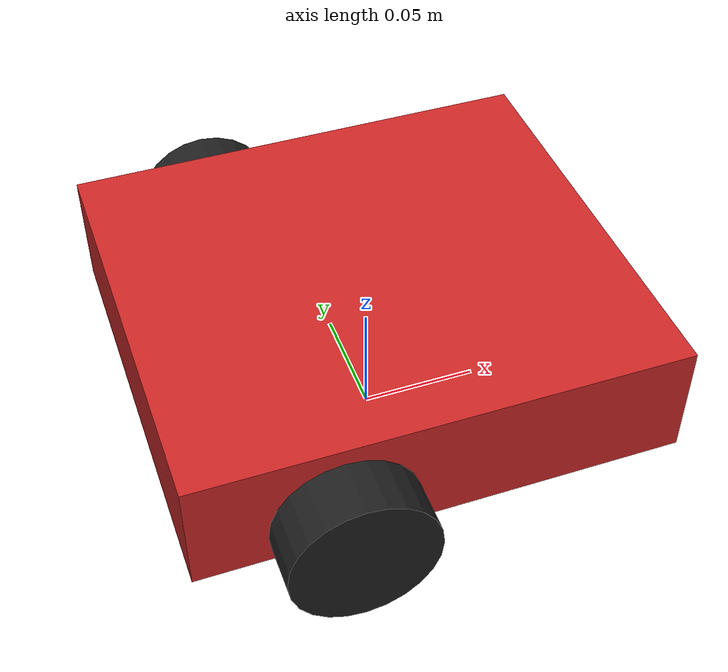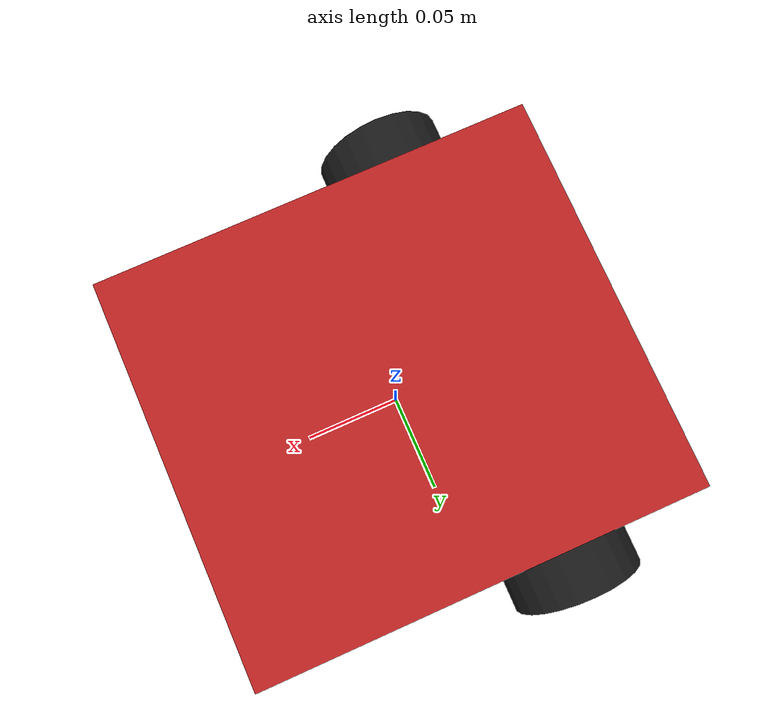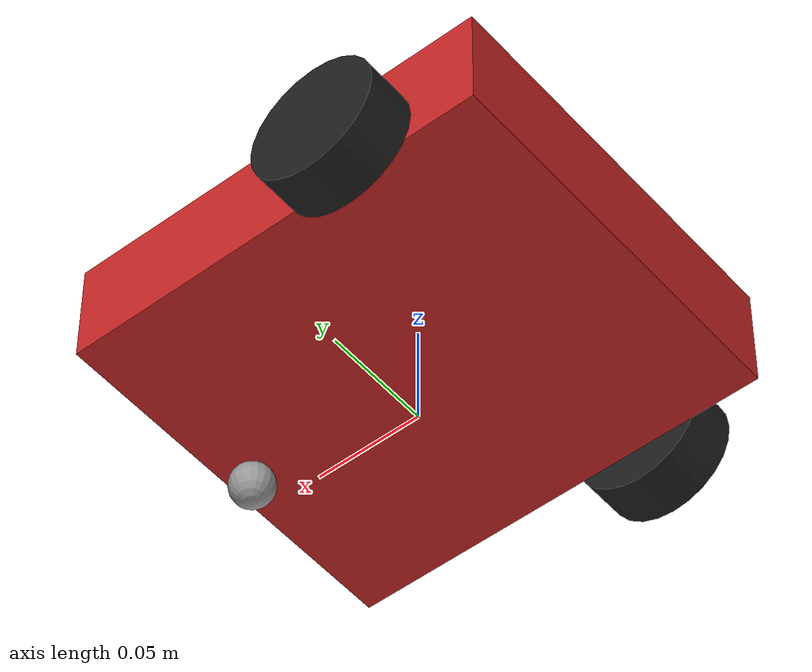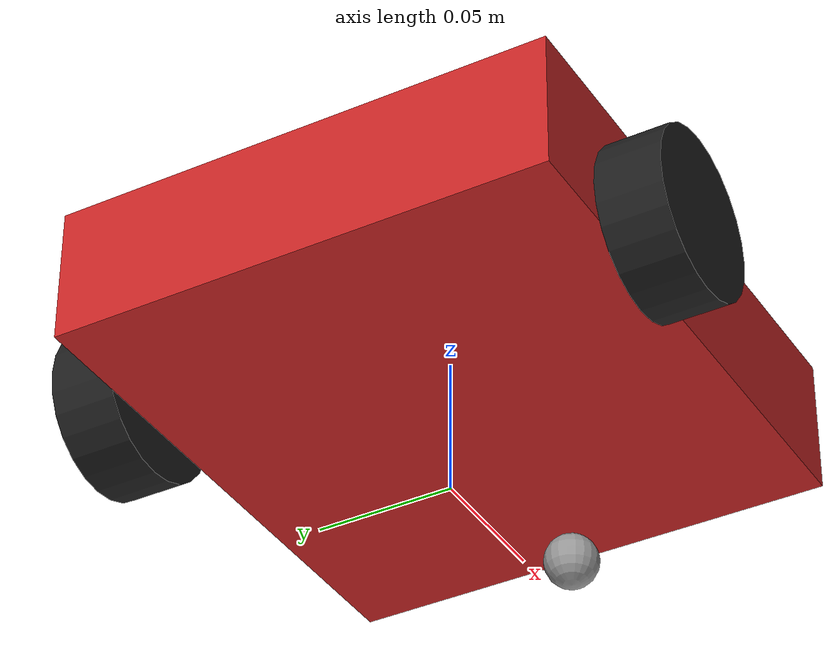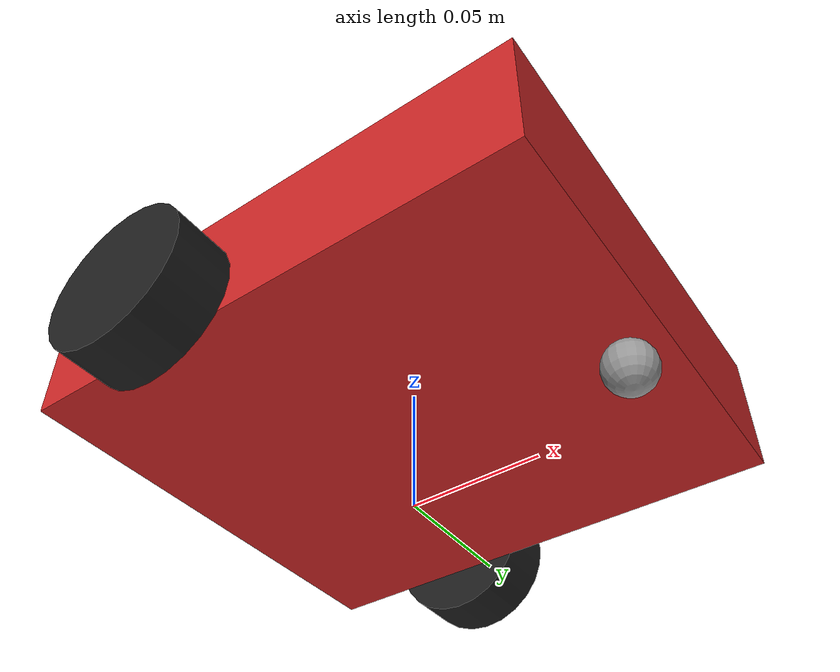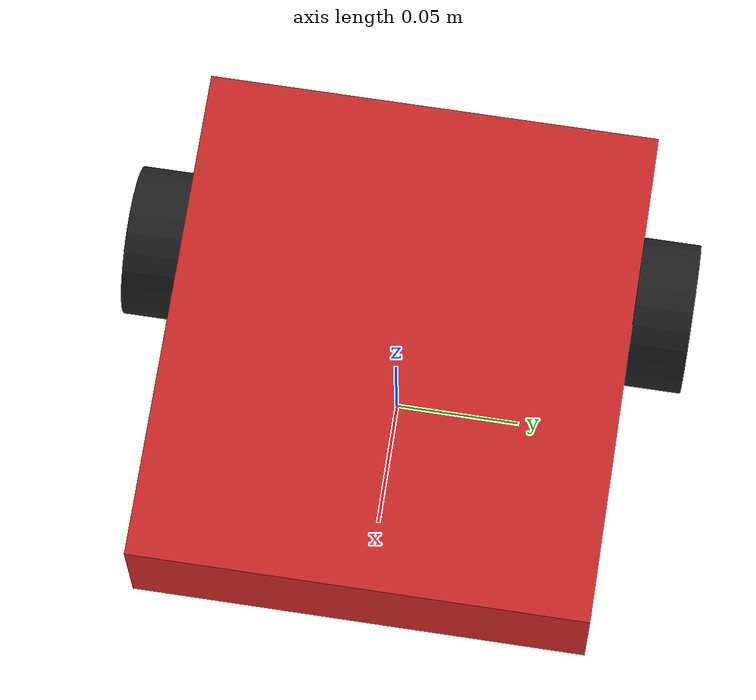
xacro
<?xml version="1.0"?>
<robot xmlns:xacro="http://www.ros.org/wiki/xacro">
    <xacro:property name="base_lx" value="0.20" />
    <xacro:property name="base_ly" value="0.18" />
    <xacro:property name="base_lz" value="0.05" />
    <xacro:property name="base_mass" value="0.2" />

    <xacro:property name="wheel_radius" value="0.03" />
    <xacro:property name="wheel_length" value="0.023" />
    <xacro:property name="wheel_offset_x" value="${-base_lx / 2 + 0.06}" />
    <xacro:property name="wheel_offset_z" value="${-base_lz / 2 + 0.013}" />
    <xacro:property name="wheel_mass" value="0.05" />

    <xacro:property name="caster_radius" value="0.01" />
    <xacro:property name="caster_offset_x" value="${base_lx / 2 - 0.014}" />
    <xacro:property name="caster_mass" value="0.09" />

    <xacro:property name="camera_mass" value="0.05" />
    <xacro:property name="camera_lx" value="0.00112" />
    <xacro:property name="camera_ly" value="0.025" />
    <xacro:property name="camera_lz" value="0.023" />
    <xacro:property name="camera_offset_z" value="${-base_lz / 2 + 0.04}" />

    <link name="base_footprint"></link>
    <link name="base_link">
        <visual>
            <origin xyz="0 0 0" rpy="0 0 0" />
            <geometry>
                <box size="${base_lx} ${base_ly} ${base_lz}" />
            </geometry>
            <material name="red" />
        </visual>

        <collision>
            <origin xyz="0 0 0" rpy="0 0 0" />
            <geometry>
                <box size="${base_lx} ${base_ly} ${base_lz}" />
            </geometry>
        </collision>

        <xacro:box_inertial m="${base_mass}" lx="${base_lx}" ly="${base_ly}" lz="${base_lz}"
            o_xyz="0 0 0" o_rpy="0 0 0" />
    </link>

    <joint name="base_footprint_joint" type="fixed">
        <origin xyz="0 0 ${base_lz / 2 + wheel_radius}" rpy="0 0 0" />
        <parent link="base_footprint" />
        <child link="base_link" />
    </joint>

    <link name="left_wheel_link">
        <visual>
            <origin xyz="0 0 0" rpy="0 0 0" />
            <geometry>
                <cylinder radius="${wheel_radius}" length="${wheel_length}" />
            </geometry>
            <material name="black" />
        </visual>

        <collision>
            <origin xyz="0 0 0" rpy="0 0 0" />
            <geometry>
                <cylinder radius="${wheel_radius}" length="${wheel_length}" />
            </geometry>
        </collision>

        <xacro:cylinder_inertial m="${wheel_mass}" r="${wheel_radius}" h="${wheel_length}"
            o_xyz="0 0 0" o_rpy="0 0 0" />
    </link>

    <joint name="left_wheel_base_joint" type="continuous">
        <origin xyz="${wheel_offset_x} ${base_ly / 2 + wheel_length / 2} ${wheel_offset_z}"
            rpy="${-pi/2} 0 0" />
        <parent link="base_link" />
        <child link="left_wheel_link" />
        <axis xyz="0 0 1" />
    </joint>

    <link name="right_wheel_link">
        <visual>
            <origin xyz="0 0 0" rpy="0 0 0" />
            <geometry>
                <cylinder radius="${wheel_radius}" length="${wheel_length}" />
            </geometry>
            <material name="black" />
        </visual>

        <collision>
            <origin xyz="0 0 0" rpy="0 0 0" />
            <geometry>
                <cylinder radius="${wheel_radius}" length="${wheel_length}" />
            </geometry>
        </collision>

        <xacro:cylinder_inertial m="${wheel_mass}" r="${wheel_radius}" h="${wheel_length}"
            o_xyz="0 0 0" o_rpy="0 0 0" />
    </link>

    <joint name="right_wheel_base_joint" type="continuous">
        <origin xyz="${wheel_offset_x} -${base_ly / 2 + wheel_length / 2} ${wheel_offset_z}"
            rpy="${-pi/2} 0 0" />
        <parent link="base_link" />
        <child link="right_wheel_link" />
        <axis xyz="0 0 1" />
    </joint>

    <link name="caster_link">

        <visual>
            <origin xyz="0 0 ${-caster_radius}" rpy="0 0 0" />
            <geometry>
                <sphere radius="${caster_radius}" />
            </geometry>
            <material name="gray" />
        </visual>

        <collision>
            <origin xyz="0 0 ${-caster_radius}" rpy="0 0 0" />
            <geometry>
                <sphere radius="${caster_radius}" />
            </geometry>
        </collision>

        <xacro:sphere_inertial m="${caster_mass}" r="${caster_radius}" o_xyz="0 0 0" o_rpy="0 0 0" />
    </link>

    <joint name="caster_base_joint" type="fixed">
        <origin xyz="${caster_offset_x} 0 ${-base_lz / 2}" rpy="0 0 0" />
        <parent link="base_link" />
        <child link="caster_link" />
    </joint>

</robot>
